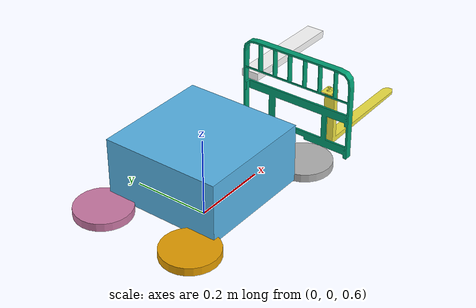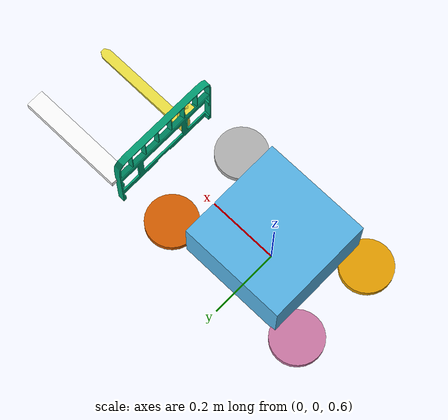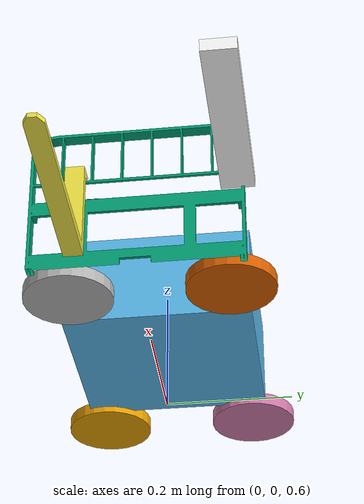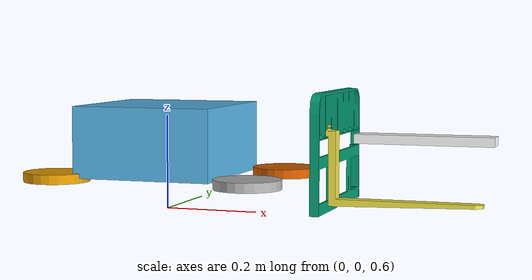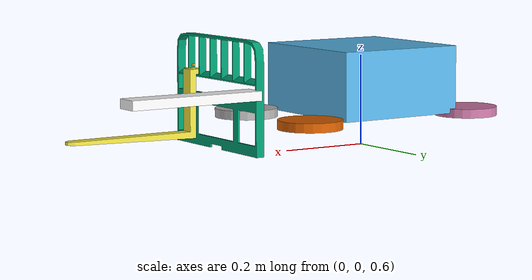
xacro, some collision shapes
<?xml version="1.0"?>
<robot xmlns:xacro="http://www.ros.org/wiki/xacro" >

    <xacro:include filename="inertial_macros.xacro"/>

    <material name="white">
        <color rgba="1 1 1 1" />
    </material>

    <material name="orange">
        <color rgba="1 0.3 0.1 1"/>
    </material>

    <material name="blue">
        <color rgba="0.2 0.2 1 1"/>
    </material>

    <material name="black">
        <color rgba="0 0 0 1"/>
    </material>

    <!-- BASE LINK -->

    <xacro:property name="track_length" value="0.3"/>
    <xacro:property name="track_depth" value="0.02"/> <!--This is actually the depth of the track when in up position-->
    <xacro:property name="track_width" value="0.05"/> <!--This is actually the depth of the track when in up position-->
    <xacro:property name="base_height" value="0.15"/>
    <xacro:property name="base_width" value="0.3"/>

    <link name="base_link">

    </link>

    <!-- CHASSIS LINK -->

    <joint name="chassis_joint" type="fixed">
        <parent link="base_link"/>
        <child link="chassis"/>
        <origin xyz="0 0 0.75"/>
        <axis xyz="0 0 1"/>
        <limit effort="110" lower="0" upper="0.6" velocity="0.5"/>
    </joint>

    <link name="chassis">
        <visual>
            <origin xyz="0 0 0"/>
            <geometry>
                <mesh filename="$(find forklift_controller)/meshes/body.dae" scale="0.0027 0.0027 0.0027"/>
            </geometry>
        </visual>
        <collision>
            <origin xyz="0 0 0"/>
            <geometry>
                <box size="0.3 ${base_width} ${base_height}"/>
            </geometry>
        </collision>
        <xacro:inertial_box mass="500" x="0.3" y="${base_width}" z="${base_height}">
            <origin xyz="0 0 0" rpy="0 0 0"/>
        </xacro:inertial_box>
    </link>

    <link name="fork_plate">
        <visual>
            <origin xyz="0 0 0" rpy="0 0 0"/>
            <geometry>
                <mesh filename="$(find forklift_controller)/meshes/fork_plate.dae" scale="0.0027 0.0027 0.0027"/>
            </geometry>
        </visual>
        <collision>
            <origin xyz="0 0 0" rpy="0 0 0"/>
            <geometry>
                <mesh filename="$(find forklift_controller)/meshes/fork_plate.dae" scale="0.0027 0.0027 0.0027"/>
            </geometry>
        </collision>
        <xacro:inertial_box mass="10" x="0" y="0" z="0">
            <origin xyz="0.2 0.1 0" rpy="0 0 0"/>
        </xacro:inertial_box>
    </link>

    <joint name="fork_plate_joint" type="prismatic">
        <parent link="chassis"/>
        <child link="fork_plate"/>
        <!--Offset the joint position by the track depth amount-->
        <origin xyz="0.375 0 0" rpy="0 0 0" />
        <axis xyz="0 0 1"/>
        <limit effort="110" lower="0" upper="0.6" velocity="0.5"/>
    </joint>

    <link name="fork_1">
        <visual>
            <origin xyz="0 0 0" rpy="0 0 -${pi}"/>
            <geometry>
                <mesh filename="$(find forklift_controller)/meshes/fork.dae" scale="0.0027 0.0027 0.0027"/>
            </geometry>
        </visual>
        <collision>
            <origin xyz="0 0 0" rpy="0 0 -${pi/2}"/>
            <geometry>
                <mesh filename="$(find forklift_controller)/meshes/fork.dae" scale="0.0027 0.0027 0.0027"/>
            </geometry>
        </collision>
        <xacro:inertial_box mass="10" x="0" y="0" z="0">
            <origin xyz="0 0 0" rpy="0 0 -${pi/2}"/>
        </xacro:inertial_box>
    </link>

    <joint name="fork_1_joint" type="fixed">
        <parent link="fork_plate"/>
        <child link="fork_1"/>
        <!--Offset the joint position by the track depth amount-->
        <origin xyz="-0.01 -0.075 -0.03" rpy="0 0 0" />
    </joint>

    <link name="fork_2">
        <visual>
            <origin xyz="0 0 0" rpy="0 0 -${pi/2}"/>
            <geometry>
                <box size="0.05 0.3 0.02"/>
            </geometry>
            <material name="white"/>
        </visual>
        <collision>
            <origin xyz="0 0 0" rpy="0 0 -${pi/2}"/>
            <geometry>
                <box size="0.5 0.25 0.02"/>
            </geometry>
        </collision>
        <xacro:inertial_box mass="10" x="0" y="0" z="0">
            <origin xyz="0 0 0" rpy="0 0 -${pi/2}"/>
        </xacro:inertial_box>
    </link>

    <joint name="fork_2_joint" type="fixed">
        <parent link="fork_plate"/>
        <child link="fork_2"/>
        <!--Offset the joint position by the track depth amount-->
        <origin xyz="0.154 0.15 0" rpy="0 0 0" />
        <axis xyz="0 0 1"/>
        <limit effort="110" lower="0" upper="0.6" velocity="0.5"/>
    </joint>

    <!-- LEFT WHEEL LINK -->

    <joint name="left_wheel_joint" type="continuous">
        <parent link="chassis"/>
        <child link="left_wheel"/>
        <origin xyz="0.225 0.125 -0.075" rpy="0 0 0" />
        <axis xyz="0 1 0"/>
    </joint>

    <link name="left_wheel">
        <origin xyz="0 0 3" rpy="0 0 -${pi}"/>
        <visual>
            <geometry>
                <cylinder radius="0.07" length="0.02"/>
            </geometry>
        </visual>
        <collision>
            <origin xyz="0 0 0" rpy="${pi/2} 0 0 "/>
            <geometry>
                <cylinder radius="0.07" length="0.02"/>
            </geometry>
        </collision>
        <xacro:inertial_cylinder mass="0.1" length="0.02" radius="0.05">
            <origin xyz="0 0 0" rpy="0 0 0"/>
        </xacro:inertial_cylinder>
    </link>

    <joint name="left_wheel_back_joint" type="continuous">
        <parent link="chassis"/>
        <child link="left_wheel_back"/>
        <origin xyz="-0.2 0.125 -0.075" rpy="0 0 0" />
        <axis xyz="0 1 0"/>
    </joint>

    <link name="left_wheel_back">
        <visual>
            <geometry>
                <cylinder radius="0.07" length="0.02"/>
            </geometry>
        </visual>
        <collision>
            <origin xyz="0 0 0" rpy="${pi/2} 0 0 "/>
            <geometry>
                <cylinder radius="0.07" length="0.02"/>
            </geometry>
        </collision>
        <xacro:inertial_cylinder mass="0.1" length="0.02" radius="0.05">
            <origin xyz="0 0 0" rpy="-${pi/2} 0 0"/>
        </xacro:inertial_cylinder>
    </link>

    <!-- RIGHT WHEEL LINK -->

    <joint name="right_wheel_joint" type="continuous">
        <parent link="chassis"/>
        <child link="right_wheel"/>
        <origin xyz="0.225 -0.125 -0.075" rpy="0 0 0" />
        <axis xyz="0 1 0"/>
    </joint>

    <link name="right_wheel">
        <visual>
            <geometry>
                <cylinder radius="0.07" length="0.02"/>
            </geometry>
        </visual>
        <collision>
            <origin xyz="0 0 0" rpy="${pi/2} 0 0 "/>
            <geometry>
                <cylinder radius="0.07" length="0.02"/>
            </geometry>
        </collision>
        <xacro:inertial_cylinder mass="0.1" length="0.02" radius="0.05">
            <origin xyz="0 0 0" rpy="0 0 0"/>
        </xacro:inertial_cylinder>
    </link>

    <joint name="right_wheel_back_joint" type="continuous">
        <parent link="chassis"/>
        <child link="right_wheel_back"/>
        <origin xyz="-0.2 -0.125 -0.075" rpy="0 0 0" />
        <axis xyz="0 1 0"/>
    </joint>

    <link name="right_wheel_back">
        <visual>
            <geometry>
                <cylinder radius="0.07" length="0.02"/>
            </geometry>
        </visual>
        <collision>
            <origin xyz="0 0 0" rpy="${pi/2} 0 0 "/>
            <geometry>
                <cylinder radius="0.07" length="0.02"/>
            </geometry>
        </collision>
        <xacro:inertial_cylinder mass="0.1" length="0.02" radius="0.05">
            <origin xyz="0 0 0" rpy="0 0 0"/>
        </xacro:inertial_cylinder>

    </link>

</robot>
